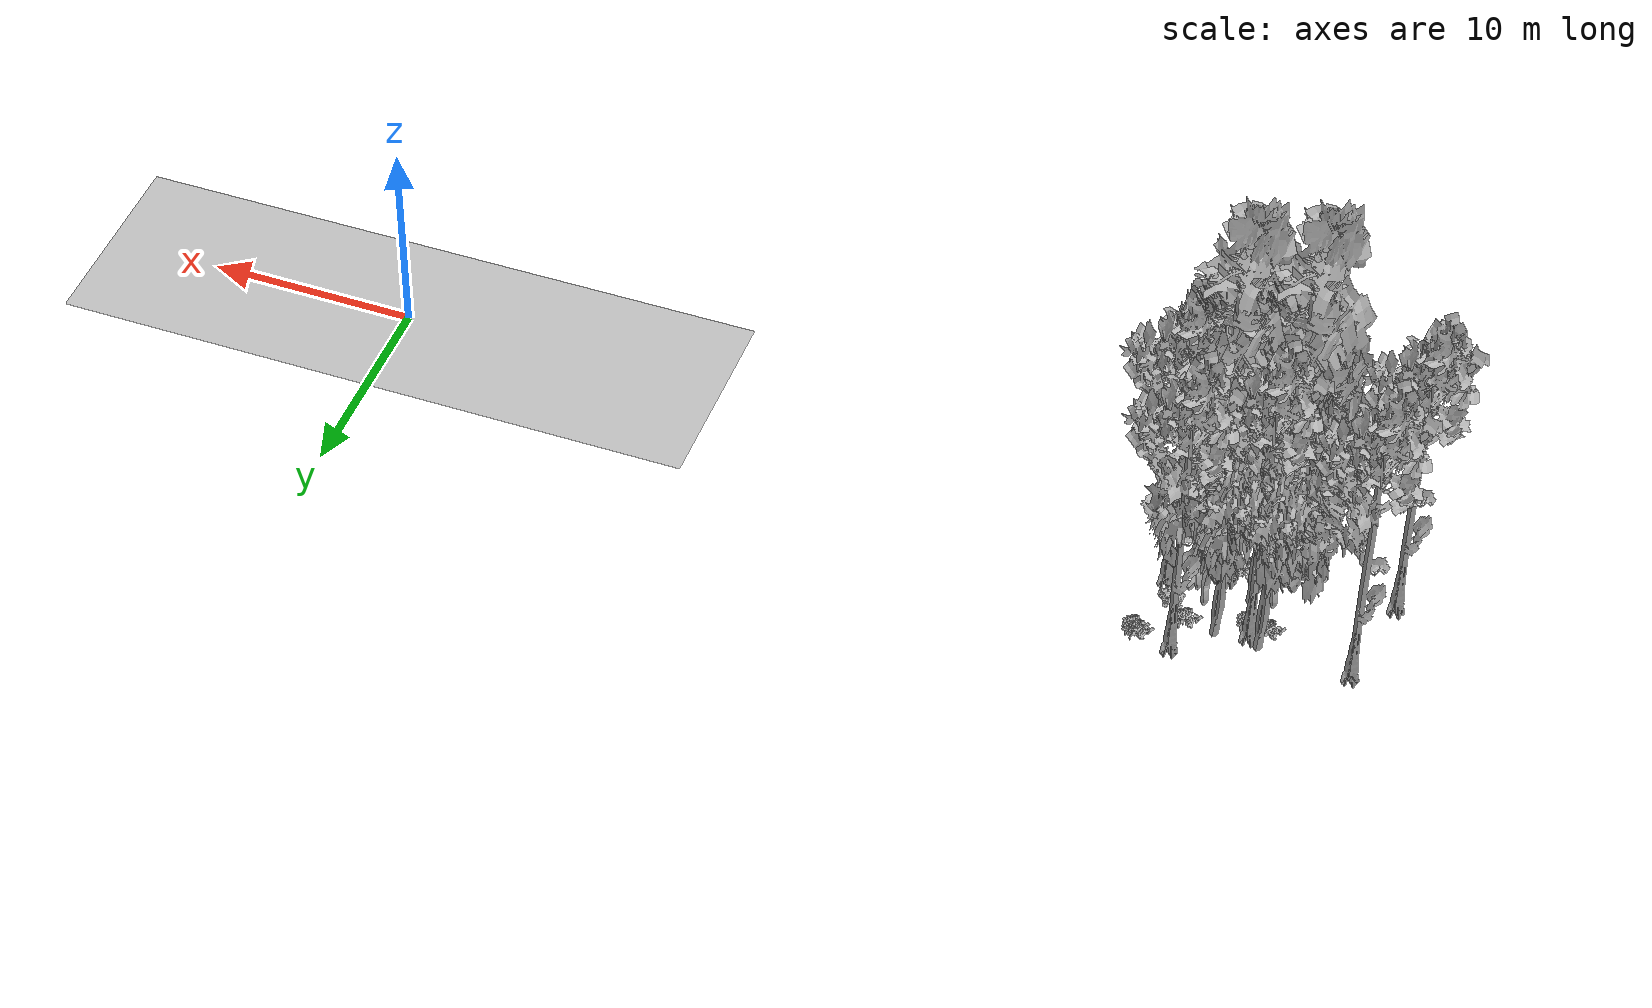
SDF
<sdf version="1.7">
 <world name="default">
  <model name="ground_plane">
   <static>1</static>
   <link name="link">
    <collision name="collision">
     <geometry><plane><normal>0 0 1</normal><size>100 100</size></plane></geometry>
     <surface><contact><ode><min_depth>0.01</min_depth><max_vel>0</max_vel></ode></contact></surface>
    </collision>
    <visual name="grass">
     <cast_shadows>0</cast_shadows>
     <geometry>
      <mesh>
       <scale>0.5814285714285714 0.18142857142857144 0.1</scale>
       <uri>file://grass_plane/meshes/grass_plane.dae</uri>
      </mesh>
     </geometry>
    </visual>
   </link>
  </model>
  <model name="Tree 82">
   <static>1</static>
   <pose>-42.879448613484165 1.8945737821110171 0 1.57079 -0 0</pose>
   <link name="link">
    <collision name="collision">
     <geometry><mesh><scale>3.5 5 3.5</scale><uri>model://tree_2/meshes/tree_2.obj</uri></mesh></geometry>
    </collision>
    <visual name="visual">
     <geometry><mesh><scale>3.5 5 3.5</scale><uri>model://tree_2/meshes/tree_2.obj</uri></mesh></geometry>
    </visual>
   </link>
  </model>
  <model name="Tree 86">
   <static>1</static>
   <pose>-43.54333305422949 6.238311872184099 0 1.57079 -0 0</pose>
   <link name="link">
    <collision name="collision">
     <geometry><mesh><scale>3.5 5 3.5</scale><uri>model://tree_2/meshes/tree_2.obj</uri></mesh></geometry>
    </collision>
    <visual name="visual">
     <geometry><mesh><scale>3.5 5 3.5</scale><uri>model://tree_2/meshes/tree_2.obj</uri></mesh></geometry>
    </visual>
   </link>
  </model>
  <model name="Tree 92">
   <static>1</static>
   <pose>-41.51528588861926 6.093022893592039 0 1.57079 -0 0</pose>
   <link name="link">
    <collision name="collision">
     <geometry><mesh><scale>3.5 5 3.5</scale><uri>model://tree_2/meshes/tree_2.obj</uri></mesh></geometry>
    </collision>
    <visual name="visual">
     <geometry><mesh><scale>3.5 5 3.5</scale><uri>model://tree_2/meshes/tree_2.obj</uri></mesh></geometry>
    </visual>
   </link>
  </model>
  <model name="Tree 100">
   <static>1</static>
   <pose>-47.648806286094704 6.193524903104304 0 1.57079 -0 0</pose>
   <link name="link">
    <collision name="collision">
     <geometry><mesh><scale>3.5 5 3.5</scale><uri>model://tree_9/meshes/tree_9.obj</uri></mesh></geometry>
    </collision>
    <visual name="visual">
     <geometry><mesh><scale>3.5 5 3.5</scale><uri>model://tree_9/meshes/tree_9.obj</uri></mesh></geometry>
    </visual>
   </link>
  </model>
  <model name="Tree 135">
   <static>1</static>
   <pose>-42.4955738772416 3.669324810467927 0 1.57079 -0 0</pose>
   <link name="link">
    <collision name="collision">
     <geometry><mesh><scale>3.5 5 3.5</scale><uri>model://tree_2/meshes/tree_2.obj</uri></mesh></geometry>
    </collision>
    <visual name="visual">
     <geometry><mesh><scale>3.5 5 3.5</scale><uri>model://tree_2/meshes/tree_2.obj</uri></mesh></geometry>
    </visual>
   </link>
  </model>
  <model name="Tree 212">
   <static>1</static>
   <pose>-48.50715065044438 1.5366773776446863 0 1.57079 -0 0</pose>
   <link name="link">
    <collision name="collision">
     <geometry><mesh><scale>3.5 5 3.5</scale><uri>model://tree_9/meshes/tree_9.obj</uri></mesh></geometry>
    </collision>
    <visual name="visual">
     <geometry><mesh><scale>3.5 5 3.5</scale><uri>model://tree_9/meshes/tree_9.obj</uri></mesh></geometry>
    </visual>
   </link>
  </model>
  <model name="Tree 238">
   <static>1</static>
   <pose>-42.828244120006005 2.3737636732102736 0 1.57079 -0 0</pose>
   <link name="link">
    <collision name="collision">
     <geometry><mesh><scale>3.5 5 3.5</scale><uri>model://tree_2/meshes/tree_2.obj</uri></mesh></geometry>
    </collision>
    <visual name="visual">
     <geometry><mesh><scale>3.5 5 3.5</scale><uri>model://tree_2/meshes/tree_2.obj</uri></mesh></geometry>
    </visual>
   </link>
  </model>
  <model name="Tree 254">
   <static>1</static>
   <pose>-41.02293400912355 2.376640826313132 0 1.57079 -0 0</pose>
   <link name="link">
    <collision name="collision">
     <geometry><mesh><scale>3.5 5 3.5</scale><uri>model://tree_9/meshes/tree_9.obj</uri></mesh></geometry>
    </collision>
    <visual name="visual">
     <geometry><mesh><scale>3.5 5 3.5</scale><uri>model://tree_9/meshes/tree_9.obj</uri></mesh></geometry>
    </visual>
   </link>
  </model>
  <model name="Tree 272">
   <static>1</static>
   <pose>-40.196516744831335 2.5277900445278334 0 1.57079 -0 0</pose>
   <link name="link">
    <collision name="collision">
     <geometry><mesh><scale>3.5 5 3.5</scale><uri>model://tree_4/meshes/tree_4.obj</uri></mesh></geometry>
    </collision>
    <visual name="visual">
     <geometry><mesh><scale>3.5 5 3.5</scale><uri>model://tree_4/meshes/tree_4.obj</uri></mesh></geometry>
    </visual>
   </link>
  </model>
  <model name="Tree 319">
   <static>1</static>
   <pose>-38.457320626222014 3.423644888200183 0 1.57079 -0 0</pose>
   <link name="link">
    <collision name="collision">
     <geometry><mesh><scale>3.5 5 3.5</scale><uri>model://tree_9/meshes/tree_9.obj</uri></mesh></geometry>
    </collision>
    <visual name="visual">
     <geometry><mesh><scale>3.5 5 3.5</scale><uri>model://tree_9/meshes/tree_9.obj</uri></mesh></geometry>
    </visual>
   </link>
  </model>
  <model name="Tree 328">
   <static>1</static>
   <pose>-42.82625118600495 5.466429662103401 0 1.57079 -0 0</pose>
   <link name="link">
    <collision name="collision">
     <geometry><mesh><scale>3.5 5 3.5</scale><uri>model://tree_9/meshes/tree_9.obj</uri></mesh></geometry>
    </collision>
    <visual name="visual">
     <geometry><mesh><scale>3.5 5 3.5</scale><uri>model://tree_9/meshes/tree_9.obj</uri></mesh></geometry>
    </visual>
   </link>
  </model>
  <model name="Tree 339">
   <static>1</static>
   <pose>-39.75374053668398 7.338496748789495 0 1.57079 -0 0</pose>
   <link name="link">
    <collision name="collision">
     <geometry><mesh><scale>3.5 5 3.5</scale><uri>model://tree_9/meshes/tree_9.obj</uri></mesh></geometry>
    </collision>
    <visual name="visual">
     <geometry><mesh><scale>3.5 5 3.5</scale><uri>model://tree_9/meshes/tree_9.obj</uri></mesh></geometry>
    </visual>
   </link>
  </model>
  <model name="Tree 442">
   <static>1</static>
   <pose>-43.11440815365529 1.6215026274020587 0 1.57079 -0 0</pose>
   <link name="link">
    <collision name="collision">
     <geometry><mesh><scale>3.5 5 3.5</scale><uri>model://tree_4/meshes/tree_4.obj</uri></mesh></geometry>
    </collision>
    <visual name="visual">
     <geometry><mesh><scale>3.5 5 3.5</scale><uri>model://tree_4/meshes/tree_4.obj</uri></mesh></geometry>
    </visual>
   </link>
  </model>
  <model name="Bush 15">
   <static>1</static>
   <pose>-40.075747355311265 5.632541014057143 0 1.57079 -0 0</pose>
   <link name="link">
    <collision name="collision">
     <geometry><mesh><scale>2 2 2</scale><uri>model://bush_2/meshes/bush_2.obj</uri></mesh></geometry>
     <surface><contact><collide_without_contact>false</collide_without_contact></contact></surface>
    </collision>
    <visual name="visual">
     <geometry><mesh><scale>2 2 2</scale><uri>model://bush_2/meshes/bush_2.obj</uri></mesh></geometry>
    </visual>
   </link>
  </model>
  <model name="Bush 62">
   <static>1</static>
   <pose>-42.68306712646313 4.839298900444895 0 1.57079 -0 0</pose>
   <link name="link">
    <collision name="collision">
     <geometry><mesh><scale>2 2 2</scale><uri>model://bush_2/meshes/bush_2.obj</uri></mesh></geometry>
     <surface><contact><collide_without_contact>false</collide_without_contact></contact></surface>
    </collision>
    <visual name="visual">
     <geometry><mesh><scale>2 2 2</scale><uri>model://bush_2/meshes/bush_2.obj</uri></mesh></geometry>
    </visual>
   </link>
  </model>
  <model name="Bush 90">
   <static>1</static>
   <pose>-43.725344956297825 5.029789165016496 0 1.57079 -0 0</pose>
   <link name="link">
    <collision name="collision">
     <geometry><mesh><scale>2 2 2</scale><uri>model://bush_2/meshes/bush_2.obj</uri></mesh></geometry>
     <surface><contact><collide_without_contact>false</collide_without_contact></contact></surface>
    </collision>
    <visual name="visual">
     <geometry><mesh><scale>2 2 2</scale><uri>model://bush_2/meshes/bush_2.obj</uri></mesh></geometry>
    </visual>
   </link>
  </model>
  <model name="Bush 117">
   <static>1</static>
   <pose>-39.0533053082261 5.059529583645272 0 1.57079 -0 0</pose>
   <link name="link">
    <collision name="collision">
     <geometry><mesh><scale>2 2 2</scale><uri>model://bush_3/meshes/bush_3.obj</uri></mesh></geometry>
     <surface><contact><collide_without_contact>false</collide_without_contact></contact></surface>
    </collision>
    <visual name="visual">
     <geometry><mesh><scale>2 2 2</scale><uri>model://bush_3/meshes/bush_3.obj</uri></mesh></geometry>
    </visual>
   </link>
  </model>
  <model name="Bush 118">
   <static>1</static>
   <pose>-38.00526834756381 6.862196368240948 0 1.57079 -0 0</pose>
   <link name="link">
    <collision name="collision">
     <geometry><mesh><scale>2 2 2</scale><uri>model://bush_2/meshes/bush_2.obj</uri></mesh></geometry>
     <surface><contact><collide_without_contact>false</collide_without_contact></contact></surface>
    </collision>
    <visual name="visual">
     <geometry><mesh><scale>2 2 2</scale><uri>model://bush_2/meshes/bush_2.obj</uri></mesh></geometry>
    </visual>
   </link>
  </model>
  <model name="Bush 136">
   <static>1</static>
   <pose>-44.61384337767181 1.7769481259791142 0 1.57079 -0 0</pose>
   <link name="link">
    <collision name="collision">
     <geometry><mesh><scale>2 2 2</scale><uri>model://bush_4/meshes/bush_4.obj</uri></mesh></geometry>
     <surface><contact><collide_without_contact>false</collide_without_contact></contact></surface>
    </collision>
    <visual name="visual">
     <geometry><mesh><scale>2 2 2</scale><uri>model://bush_4/meshes/bush_4.obj</uri></mesh></geometry>
    </visual>
   </link>
  </model>
  <model name="Bush 173">
   <static>1</static>
   <pose>-40.0011893438197 1.5757191282796867 0 1.57079 -0 0</pose>
   <link name="link">
    <collision name="collision">
     <geometry><mesh><scale>2 2 2</scale><uri>model://bush_2/meshes/bush_2.obj</uri></mesh></geometry>
     <surface><contact><collide_without_contact>false</collide_without_contact></contact></surface>
    </collision>
    <visual name="visual">
     <geometry><mesh><scale>2 2 2</scale><uri>model://bush_2/meshes/bush_2.obj</uri></mesh></geometry>
    </visual>
   </link>
  </model>
  <model name="Bush 208">
   <static>1</static>
   <pose>-41.52157957073412 2.330634652587978 0 1.57079 -0 0</pose>
   <link name="link">
    <collision name="collision">
     <geometry><mesh><scale>2 2 2</scale><uri>model://bush_3/meshes/bush_3.obj</uri></mesh></geometry>
     <surface><contact><collide_without_contact>false</collide_without_contact></contact></surface>
    </collision>
    <visual name="visual">
     <geometry><mesh><scale>2 2 2</scale><uri>model://bush_3/meshes/bush_3.obj</uri></mesh></geometry>
    </visual>
   </link>
  </model>
  <model name="Bush 275">
   <static>1</static>
   <pose>-38.27232011484401 7.0606066879221565 0 1.57079 -0 0</pose>
   <link name="link">
    <collision name="collision">
     <geometry><mesh><scale>2 2 2</scale><uri>model://bush_2/meshes/bush_2.obj</uri></mesh></geometry>
     <surface><contact><collide_without_contact>false</collide_without_contact></contact></surface>
    </collision>
    <visual name="visual">
     <geometry><mesh><scale>2 2 2</scale><uri>model://bush_2/meshes/bush_2.obj</uri></mesh></geometry>
    </visual>
   </link>
  </model>
 </world>
</sdf>
